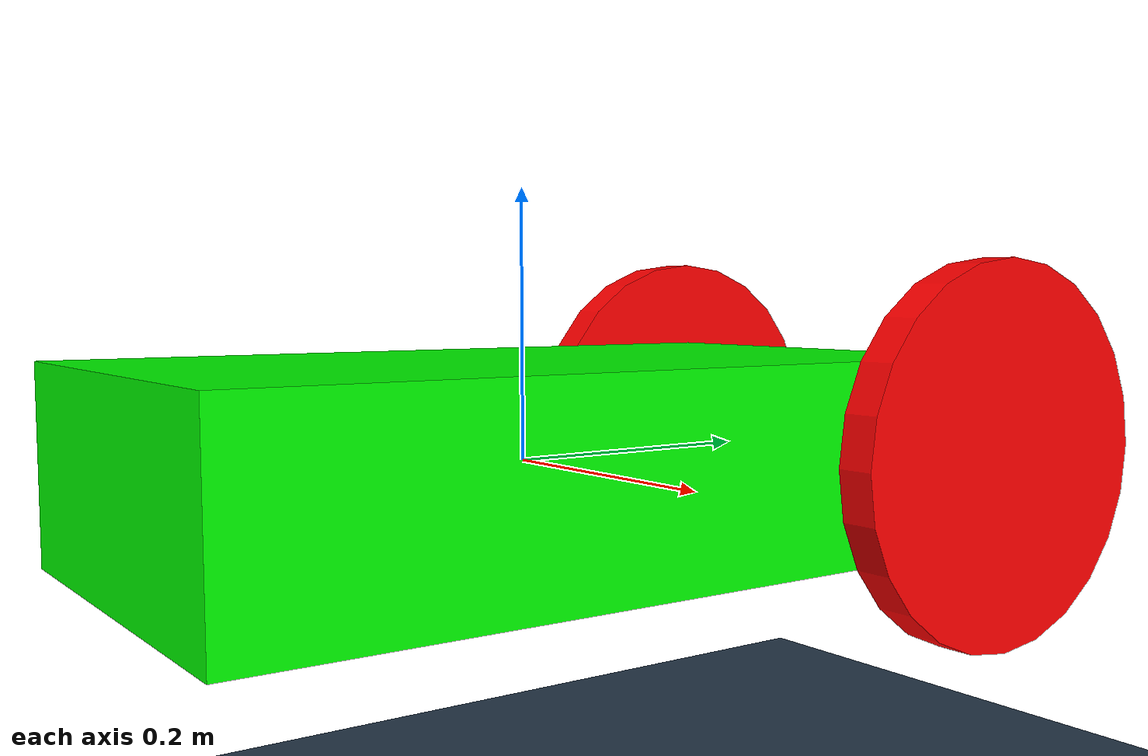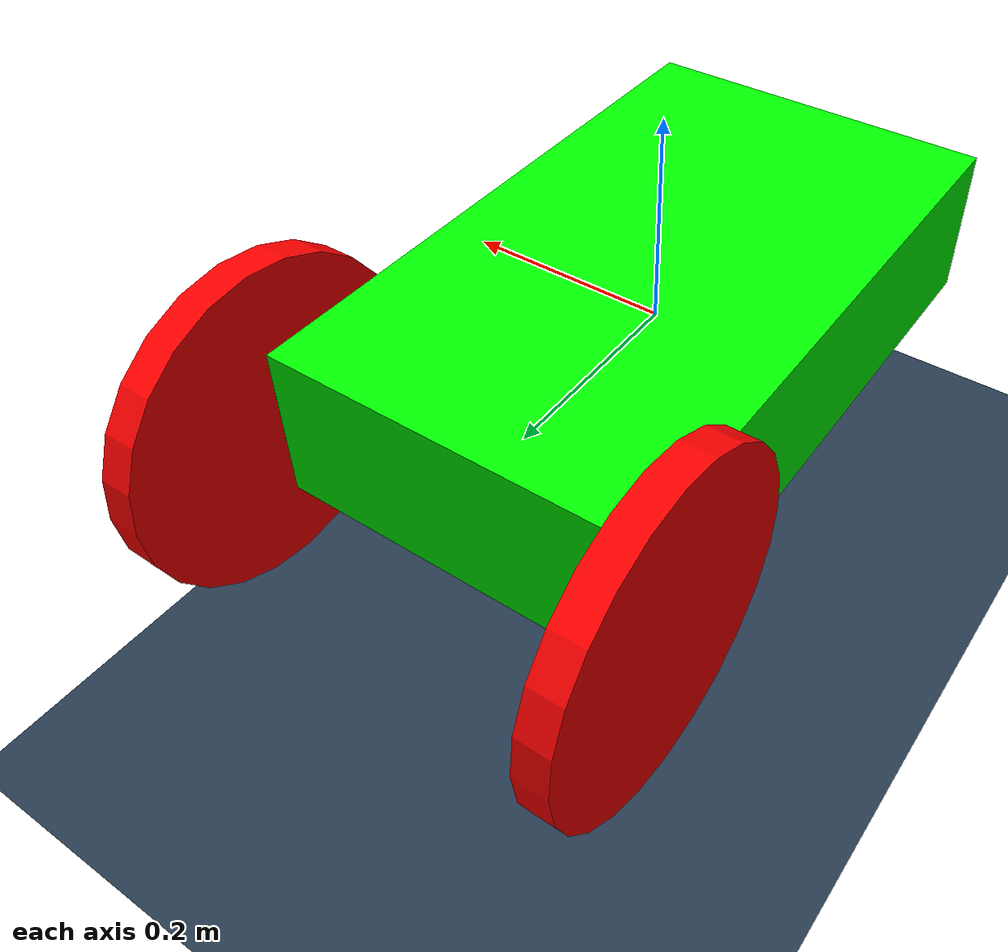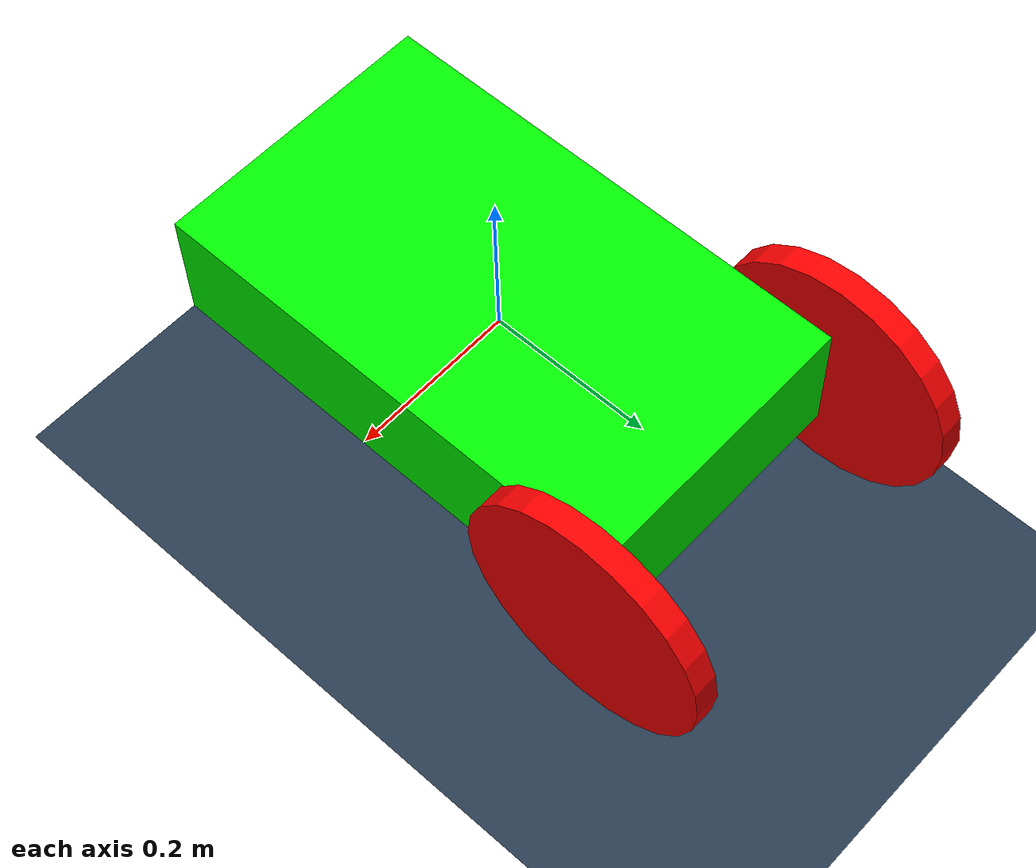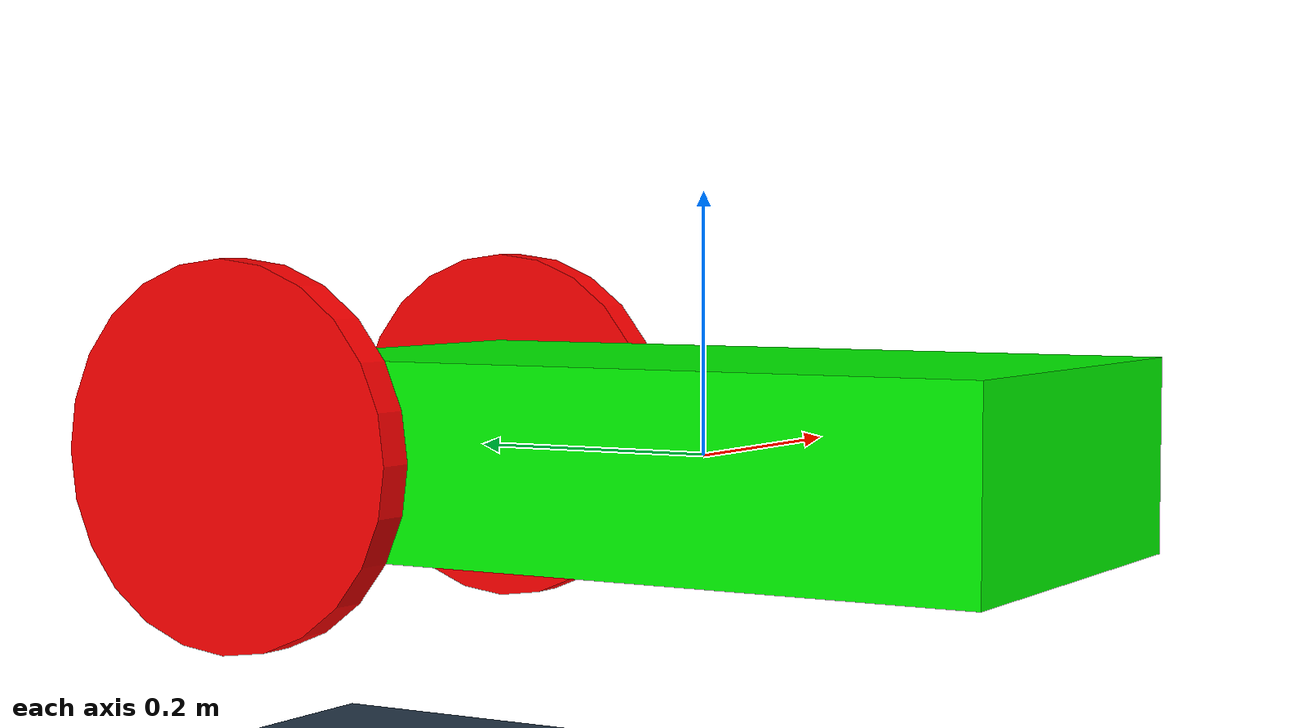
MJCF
<mujoco model="whadlo">
    <compiler angle="radian" />
    <size njmax="500" nconmax="100" />

    <visual>
        <rgba haze="0.15 0.25 0.35 1"/>
        <quality shadowsize="2048"/>
        <map stiffness="700" shadowscale="0.5" fogstart="10" fogend="15" zfar="40" haze="0.3"/>
    </visual>

    <asset>
        <texture name="texplane" type="2d" builtin="checker" rgb1=".2 .3 .4" rgb2=".1 0.15 0.2"
            width="512" height="512" mark="cross" markrgb=".8 .8 .8"/>
        <material name="matplane" reflectance="0.3" texture="texplane" texrepeat="1 1" texuniform="true"/>
    </asset>

    <worldbody>
        <light directional="true" diffuse=".4 .4 .4" specular="0.1 0.1 0.1" pos="0 0 5.0" dir="0 0 -1" castshadow="false"/>
        <light directional="true" diffuse=".6 .6 .6" specular="0.2 0.2 0.2" pos="0 0 4" dir="0 0 -1"/>
        <!-- collision for the floor: affinity = 0001 1111 co that it can collide with all robot parts  -->
        <geom name="ground" type="plane" size="0 0 1" pos="0 0 -0.3" quat="1 0 0 0" material="matplane" condim="3" conaffinity="31"/>
        <geom size="0.175 0.3 0.075" type="box" rgba="0 1 0 1" />
        <body name="kolo_lewe" pos="0.192 0.3 0" quat="0.707388 0 -0.706825 0">
            <inertial pos="0 0.015202 0" quat="0.707107 0 0 0.707107" mass="2.18007" diaginertia="0.0243394 0.0123395 0.0123395" />
            <joint name="z_kolo_lewe" pos="0 0 0" axis="0 0 1" />
            <geom size="0.15 0.015" type="cylinder" rgba="1 0 0 1" />
        </body>
        <body name="kolo_prawe" pos="-0.192 0.3 0" quat="0.707388 0 -0.706825 0">
            <inertial pos="0 0.015202 0" quat="0.707107 0 0 0.707107" mass="2.18007" diaginertia="0.0243394 0.0123395 0.0123395" />
            <joint name="z_kolo_prawe" pos="0 0 0" axis="0 0 1" />
            <geom size="0.15 0.015" type="cylinder" rgba="1 0 0 1" />
        </body>
    </worldbody>
</mujoco>
